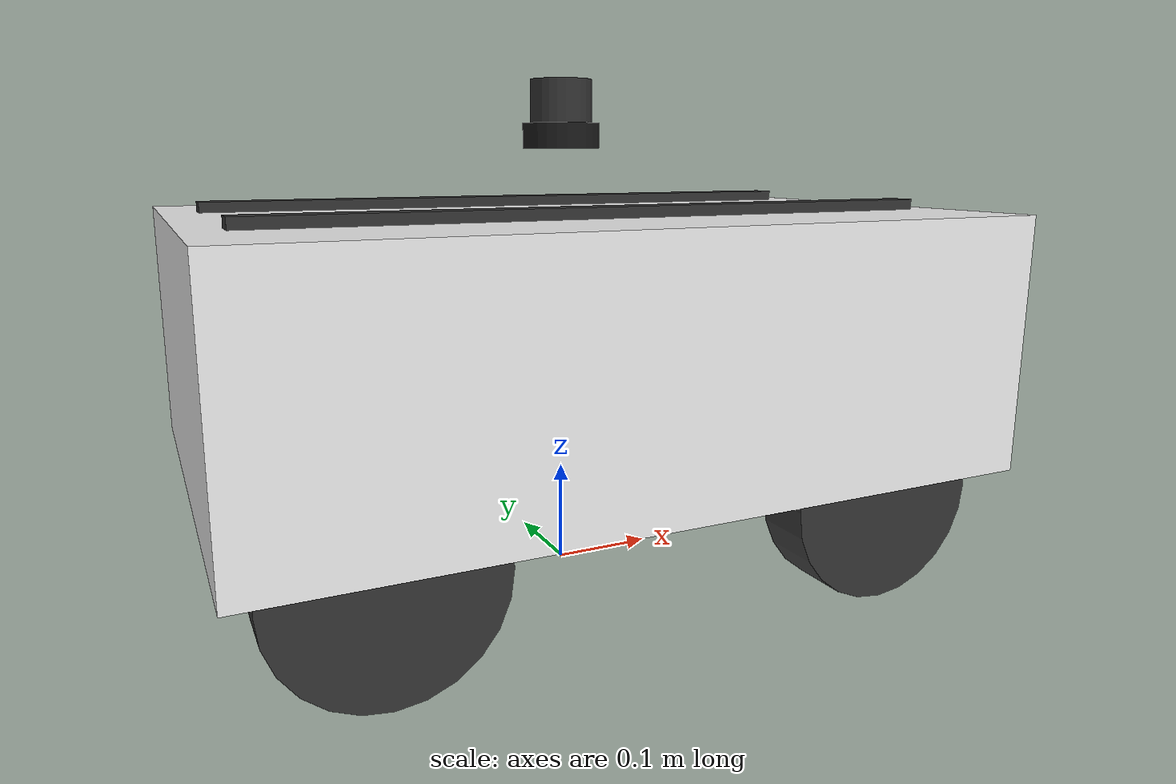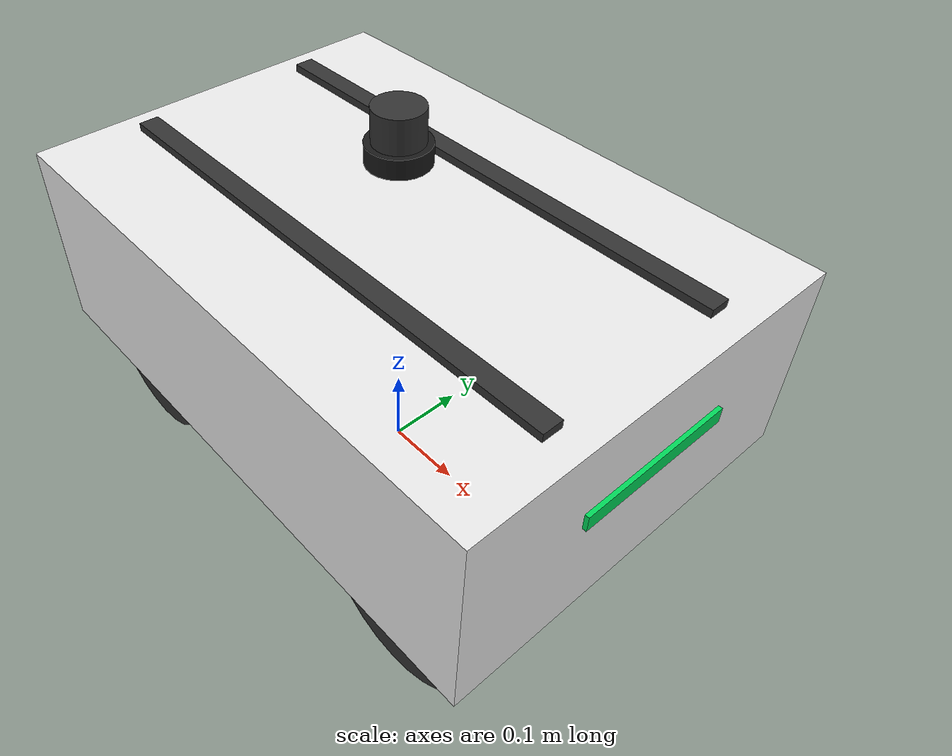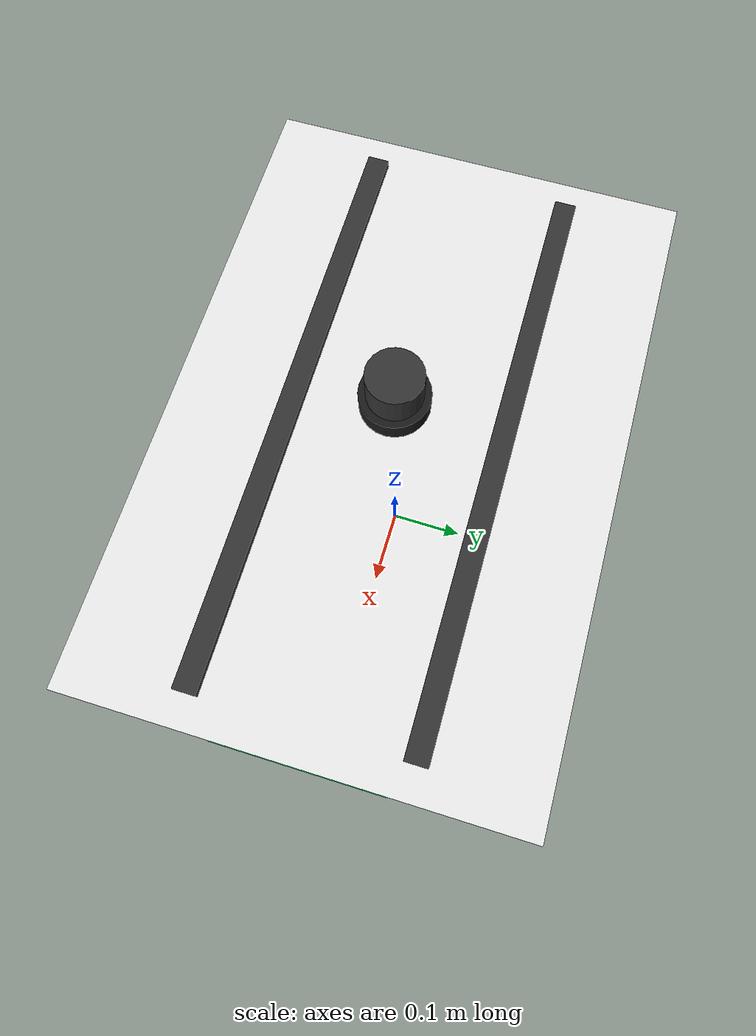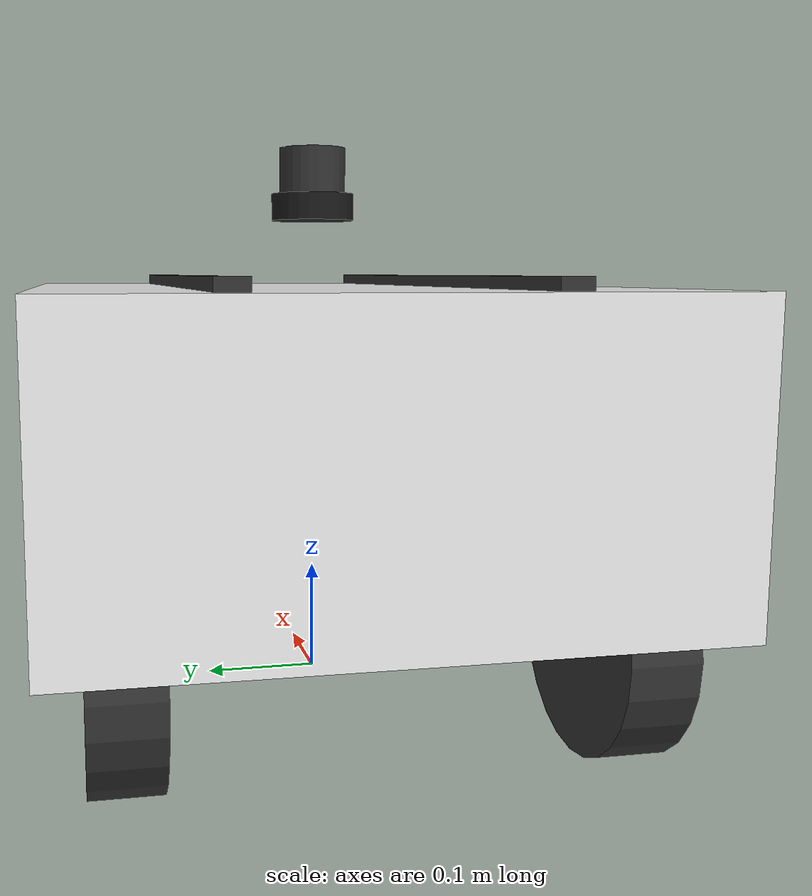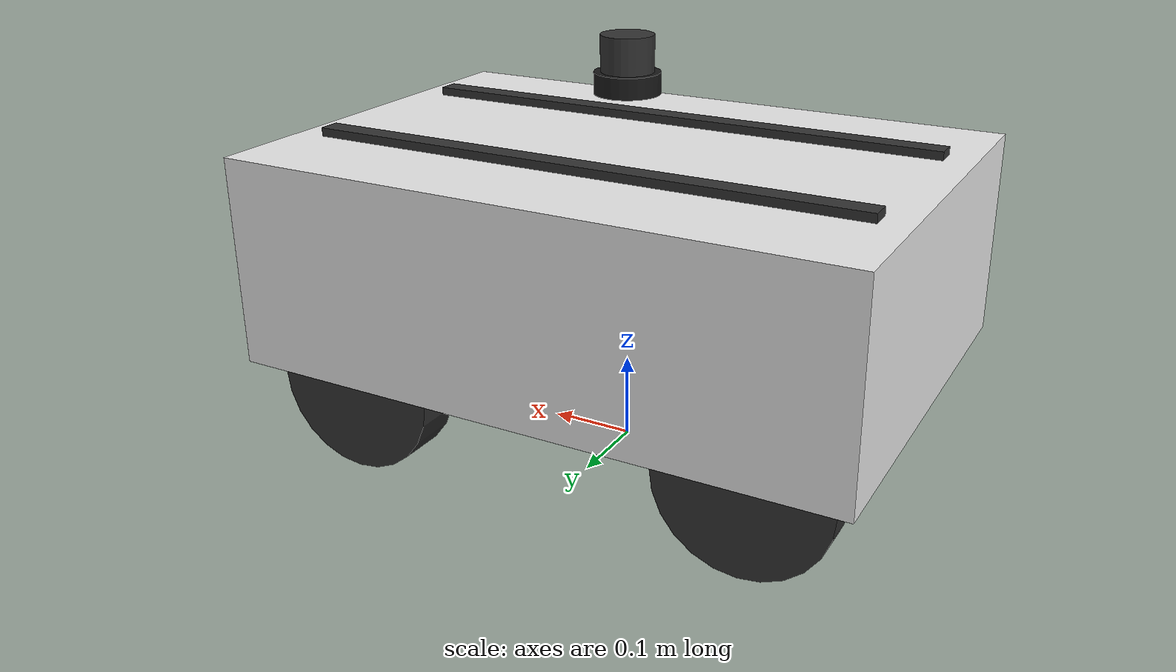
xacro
<?xml version="1.0"?>
<!-- WL100 全向轮底盘 URDF 描述文件 (方案A：基本几何体精确还原) -->
<!-- 数据来源：官方产品尺寸图 + 规格参数表 -->
<!-- 遵循规范：/home/nvidia/robot_ws/JETSON_RULES.md -->
<robot xmlns:xacro="http://www.ros.org/wiki/xacro" name="wl100">

  <!--                    底盘尺寸参数 (官方规格)                         -->

  <!-- 车体主体 (整机 L730×W500×H365mm，离地间隙 120mm) -->
  <xacro:property name="chassis_length" value="0.73" />
  <xacro:property name="chassis_width"  value="0.50" />
  <xacro:property name="chassis_height" value="0.245" />    <!-- 365 - 120 = 245mm -->
  <xacro:property name="ground_clearance" value="0.12" />   <!-- 离地间隙 120mm -->

  <!-- 轮子参数 (8寸轮毂电机 / 200mm 实心轮胎) -->
  <xacro:property name="wheel_radius" value="0.10" />       <!-- 200mm 直径 -->
  <xacro:property name="wheel_width"  value="0.055" />      <!-- 实测值 55mm -->

  <!-- 底盘运动学参数 -->
  <xacro:property name="wheelbase"   value="0.48" />        <!-- 前后轮轴距 480mm -->
  <xacro:property name="track_width" value="0.38" />        <!-- 左右轮距 380mm -->

  <!-- 型材支架参数 (车顶安装导轨) -->
  <xacro:property name="rail_length"  value="0.66" />       <!-- 实测值 660mm -->
  <xacro:property name="rail_width"   value="0.025" />      <!-- 实测值 25mm -->
  <xacro:property name="rail_height"  value="0.01" />       <!-- 实测值 10mm -->
  <xacro:property name="rail_spacing" value="0.235" />      <!-- 来自尺寸图标注 -->

  <!-- 雷达安装位置 — 相对于 base_link 中心 (米) -->
  <xacro:property name="lidar_x" value="0.0" />             <!-- TODO: 确认前后偏移 -->
  <xacro:property name="lidar_y" value="0.0" />             <!-- TODO: 确认左右偏移 -->
  <xacro:property name="lidar_z" value="0.05" />            <!-- TODO: 确认距车顶高度 -->

  <!-- 整备质量 -->
  <xacro:property name="chassis_mass" value="75.0" />       <!-- 含电池、电机 (kg) -->
  <xacro:property name="wheel_mass"   value="3.0" />        <!-- 轮毂电机 (估算 kg) -->

  <!--                    计算衍生量                                     -->

  <!-- base_link 中心离地高度 = 离地间隙 + 车体高度的一半 -->
  <xacro:property name="base_link_z" value="${ground_clearance + chassis_height / 2}" />

  <!-- 轮子中心相对 base_link 的 Z 偏移 (轮子中心在 wheel_radius 高度) -->
  <xacro:property name="wheel_z_offset" value="${wheel_radius - base_link_z}" />

  <!--                    颜色材质定义                                    -->

  <material name="white">
    <color rgba="0.92 0.92 0.92 1.0"/>
  </material>

  <material name="dark_grey">
    <color rgba="0.2 0.2 0.2 1.0"/>
  </material>

  <material name="black">
    <color rgba="0.1 0.1 0.1 1.0"/>
  </material>

  <material name="light_grey">
    <color rgba="0.6 0.6 0.6 1.0"/>
  </material>

  <material name="green_led">
    <color rgba="0.0 0.85 0.35 1.0"/>
  </material>

  <!--                    轮子 xacro 宏 (避免重复代码)                    -->

  <xacro:macro name="wheel_link" params="name x_reflect y_reflect">
    <link name="${name}">
      <visual>
        <geometry>
          <cylinder radius="${wheel_radius}" length="${wheel_width}"/>
        </geometry>
        <!-- 圆柱体默认沿 Z 轴，绕 X 轴旋转 90° 使其横放（转轴沿 Y） -->
        <origin xyz="0 0 0" rpy="${pi/2} 0 0"/>
        <material name="dark_grey"/>
      </visual>
      <collision>
        <geometry>
          <cylinder radius="${wheel_radius}" length="${wheel_width}"/>
        </geometry>
        <origin xyz="0 0 0" rpy="${pi/2} 0 0"/>
      </collision>
      <inertial>
        <mass value="${wheel_mass}"/>
        <!-- 圆柱体惯性张量 (转轴沿 Z 时的公式，旋转后 URDF 会自动处理) -->
        <inertia
          ixx="${wheel_mass / 12.0 * (3.0 * wheel_radius * wheel_radius + wheel_width * wheel_width)}"
          ixy="0.0" ixz="0.0"
          iyy="${wheel_mass / 12.0 * (3.0 * wheel_radius * wheel_radius + wheel_width * wheel_width)}"
          iyz="0.0"
          izz="${wheel_mass / 2.0 * wheel_radius * wheel_radius}" />
      </inertial>
    </link>

    <joint name="base_link_to_${name}" type="fixed">
      <parent link="base_link"/>
      <child link="${name}"/>
      <origin xyz="${x_reflect * wheelbase / 2} ${y_reflect * track_width / 2} ${wheel_z_offset}" rpy="0 0 0"/>
    </joint>
  </xacro:macro>

  <!--                    base_footprint (地面投影点)                     -->

  <link name="base_footprint"/>

  <joint name="base_footprint_to_base_link" type="fixed">
    <parent link="base_footprint"/>
    <child link="base_link"/>
    <origin xyz="0 0 ${base_link_z}" rpy="0 0 0"/>
  </joint>

  <!--                    base_link (车体主体)                           -->

  <link name="base_link">
    <visual>
      <geometry>
        <box size="${chassis_length} ${chassis_width} ${chassis_height}"/>
      </geometry>
      <material name="white"/>
    </visual>
    <collision>
      <geometry>
        <box size="${chassis_length} ${chassis_width} ${chassis_height}"/>
      </geometry>
    </collision>
    <inertial>
      <mass value="${chassis_mass}"/>
      <!-- 均匀密度长方体惯性张量 -->
      <inertia
        ixx="${chassis_mass / 12.0 * (chassis_width * chassis_width + chassis_height * chassis_height)}"
        ixy="0.0" ixz="0.0"
        iyy="${chassis_mass / 12.0 * (chassis_length * chassis_length + chassis_height * chassis_height)}"
        iyz="0.0"
        izz="${chassis_mass / 12.0 * (chassis_length * chassis_length + chassis_width * chassis_width)}" />
    </inertial>
  </link>

  <!--                    4 个轮子实例化                                  -->

  <xacro:wheel_link name="wheel_front_left"  x_reflect="1"  y_reflect="1"  />
  <xacro:wheel_link name="wheel_front_right" x_reflect="1"  y_reflect="-1" />
  <xacro:wheel_link name="wheel_rear_left"   x_reflect="-1" y_reflect="1"  />
  <xacro:wheel_link name="wheel_rear_right"  x_reflect="-1" y_reflect="-1" />

  <!--                    型材支架 (车顶导轨，2 根)                       -->

  <link name="rail_left">
    <visual>
      <geometry>
        <box size="${rail_length} ${rail_width} ${rail_height}"/>
      </geometry>
      <material name="dark_grey"/>
    </visual>
  </link>

  <joint name="base_link_to_rail_left" type="fixed">
    <parent link="base_link"/>
    <child link="rail_left"/>
    <origin xyz="0 ${rail_spacing / 2} ${chassis_height / 2 + rail_height / 2}" rpy="0 0 0"/>
  </joint>

  <link name="rail_right">
    <visual>
      <geometry>
        <box size="${rail_length} ${rail_width} ${rail_height}"/>
      </geometry>
      <material name="dark_grey"/>
    </visual>
  </link>

  <joint name="base_link_to_rail_right" type="fixed">
    <parent link="base_link"/>
    <child link="rail_right"/>
    <origin xyz="0 ${-rail_spacing / 2} ${chassis_height / 2 + rail_height / 2}" rpy="0 0 0"/>
  </joint>

  <!--           前方装饰灯带 (绿色 LED，标识车头方向)                     -->

  <link name="led_strip_front">
    <visual>
      <geometry>
        <box size="0.005 0.20 0.02"/>
      </geometry>
      <material name="green_led"/>
    </visual>
  </link>

  <joint name="base_link_to_led_front" type="fixed">
    <parent link="base_link"/>
    <child link="led_strip_front"/>
    <origin xyz="${chassis_length / 2 + 0.003} 0 ${chassis_height * 0.1}" rpy="0 0 0"/>
  </joint>

  <!--                    LiDAR-L2 (激光雷达，预留)                      -->

  <joint name="base_link_to_lidar" type="fixed">
    <parent link="base_link"/>
    <child link="unilidar_lidar"/>
    <origin xyz="${lidar_x} ${lidar_y} ${chassis_height / 2 + rail_height + lidar_z}" rpy="0 0 0"/>
  </joint>

  <link name="unilidar_lidar">
    <!-- 底座：圆柱 Φ75×24mm (原点在底面中心) -->
    <visual>
      <geometry>
        <cylinder radius="0.0375" length="0.024"/>
      </geometry>
      <origin xyz="0 0 0.012" rpy="0 0 0"/>
      <material name="black"/>
    </visual>
    <!-- 上半部(含罩壳与犄角)：近似为圆柱 Φ60×41mm -->
    <visual>
      <geometry>
        <cylinder radius="0.030" length="0.041"/>
      </geometry>
      <origin xyz="0 0 0.0445" rpy="0 0 0"/>
      <material name="dark_grey"/>
    </visual>
    <!-- 碰撞体：整体圆柱包围盒 Φ75×65mm -->
    <collision>
      <geometry>
        <cylinder radius="0.0375" length="0.065"/>
      </geometry>
      <origin xyz="0 0 0.0325" rpy="0 0 0"/>
    </collision>
  </link>

  <!--               IMU (雷达内置，由 SDK 节点发布 TF)                   -->
  <!-- IMU 与点云坐标系仅有微小平移偏差，由雷达 SDK 内部发布 TF -->
  <!-- 此处不单独定义 unilidar_imu link，由 SDK 节点负责 -->

</robot>
